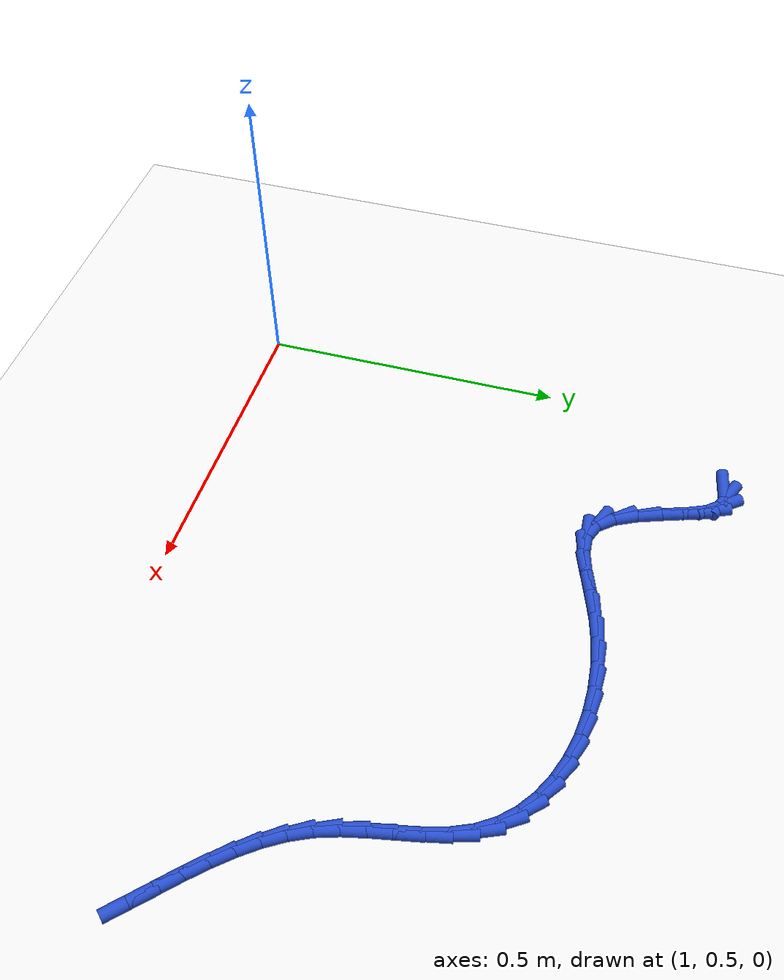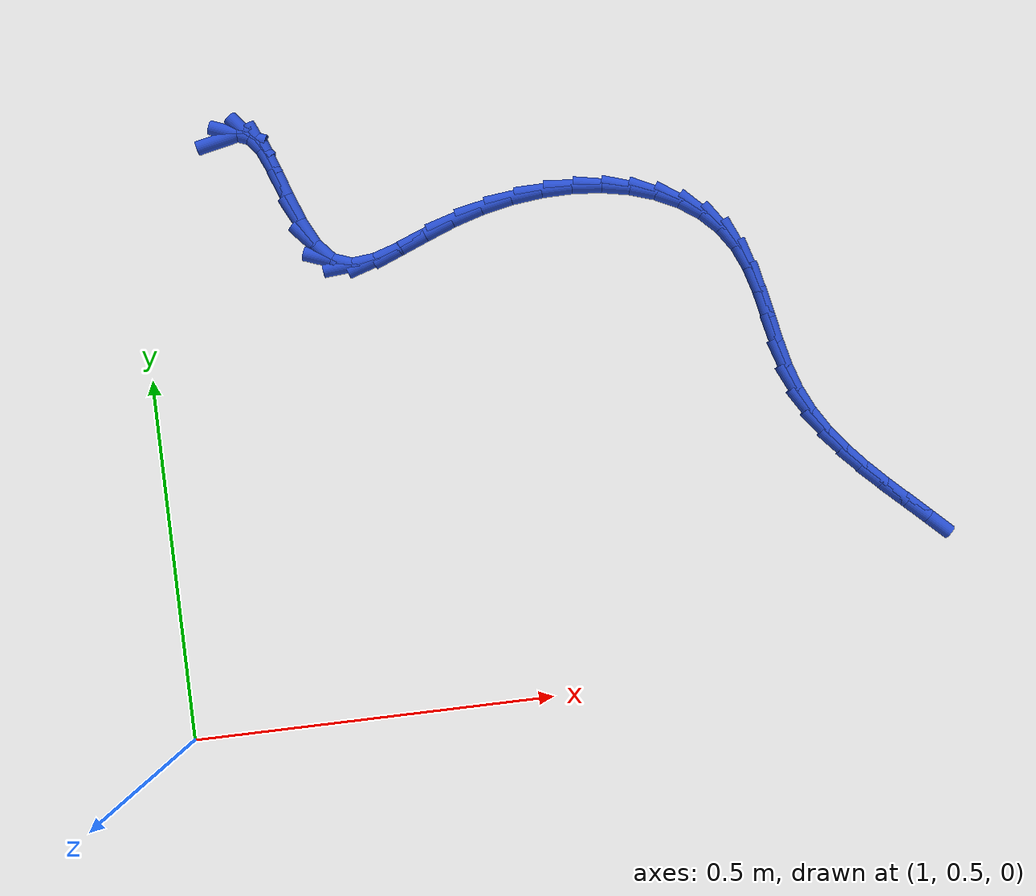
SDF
<sdf version="1.6">
 <world name="default">
  <model name="ground_plane">
   <static>1</static>
   <link name="link">
    <collision name="collision">
     <geometry><plane><normal>0 0 1</normal><size>100 100</size></plane></geometry>
     <surface><friction><ode><mu>100</mu><mu2>50</mu2></ode></friction></surface>
    </collision>
    <visual name="visual">
     <cast_shadows>0</cast_shadows>
     <geometry><plane><normal>0 0 1</normal><size>100 100</size></plane></geometry>
     <material>
      <script><uri>file://media/materials/scripts/gazebo.material</uri><name>Gazebo/WhiteGlow</name></script>
     </material>
    </visual>
   </link>
  </model>
  <model name="line">
   <link name="link_54">
    <pose>1.14125643744882 1.319054507780313 0.01 0 1.57 0.20908482270291834</pose>
    <collision name="collision">
     <geometry><cylinder><radius>0.01</radius><length>0.08</length></cylinder></geometry>
    </collision>
    <visual name="visual">
     <material>
      <script><name>Gazebo/Blue</name><uri>file://media/materials/scripts/gazebo.material</uri></script>
     </material>
     <geometry><cylinder><radius>0.01</radius><length>0.08</length></cylinder></geometry>
    </visual>
   </link>
   <link name="link_55">
    <pose>1.1596208996389854 1.3229511872990352 0.01 0 1.57 -0.3728819351918733</pose>
    <collision name="collision">
     <geometry><cylinder><radius>0.01</radius><length>0.08</length></cylinder></geometry>
    </collision>
    <visual name="visual">
     <material>
      <script><name>Gazebo/Blue</name><uri>file://media/materials/scripts/gazebo.material</uri></script>
     </material>
     <geometry><cylinder><radius>0.01</radius><length>0.08</length></cylinder></geometry>
    </visual>
   </link>
   <link name="link_56">
    <pose>1.1760893195778457 1.316509031784908 0.01 0 1.57 -0.8946897747275846</pose>
    <collision name="collision">
     <geometry><cylinder><radius>0.01</radius><length>0.08</length></cylinder></geometry>
    </collision>
    <visual name="visual">
     <material>
      <script><name>Gazebo/Blue</name><uri>file://media/materials/scripts/gazebo.material</uri></script>
     </material>
     <geometry><cylinder><radius>0.01</radius><length>0.08</length></cylinder></geometry>
    </visual>
   </link>
   <link name="link_57">
    <pose>1.1906662993884425 1.2983387304484006 0.01 0 1.57 -1.160216142932323</pose>
    <collision name="collision">
     <geometry><cylinder><radius>0.01</radius><length>0.08</length></cylinder></geometry>
    </collision>
    <visual name="visual">
     <material>
      <script><name>Gazebo/Blue</name><uri>file://media/materials/scripts/gazebo.material</uri></script>
     </material>
     <geometry><cylinder><radius>0.01</radius><length>0.08</length></cylinder></geometry>
    </visual>
   </link>
   <link name="link_58">
    <pose>1.2036650766326744 1.2684785297812609 0.01 0 1.57 -1.2380373773565452</pose>
    <collision name="collision">
     <geometry><cylinder><radius>0.01</radius><length>0.08</length></cylinder></geometry>
    </collision>
    <visual name="visual">
     <material>
      <script><name>Gazebo/Blue</name><uri>file://media/materials/scripts/gazebo.material</uri></script>
     </material>
     <geometry><cylinder><radius>0.01</radius><length>0.08</length></cylinder></geometry>
    </visual>
   </link>
   <link name="link_59">
    <pose>1.2164044828844498 1.2316179342745102 0.01 0 1.57 -1.2196464384357153</pose>
    <collision name="collision">
     <geometry><cylinder><radius>0.01</radius><length>0.08</length></cylinder></geometry>
    </collision>
    <visual name="visual">
     <material>
      <script><name>Gazebo/Blue</name><uri>file://media/materials/scripts/gazebo.material</uri></script>
     </material>
     <geometry><cylinder><radius>0.01</radius><length>0.08</length></cylinder></geometry>
    </visual>
   </link>
   <link name="link_60">
    <pose>1.230407811672967 1.193392163383399 0.01 0 1.57 -1.111571690982287</pose>
    <collision name="collision">
     <geometry><cylinder><radius>0.01</radius><length>0.08</length></cylinder></geometry>
    </collision>
    <visual name="visual">
     <material>
      <script><name>Gazebo/Blue</name><uri>file://media/materials/scripts/gazebo.material</uri></script>
     </material>
     <geometry><cylinder><radius>0.01</radius><length>0.08</length></cylinder></geometry>
    </visual>
   </link>
   <link name="link_61">
    <pose>1.2471983565274267 1.1594364365631769 0.01 0 1.57 -0.8506279636703741</pose>
    <collision name="collision">
     <geometry><cylinder><radius>0.01</radius><length>0.08</length></cylinder></geometry>
    </collision>
    <visual name="visual">
     <material>
      <script><name>Gazebo/Blue</name><uri>file://media/materials/scripts/gazebo.material</uri></script>
     </material>
     <geometry><cylinder><radius>0.01</radius><length>0.08</length></cylinder></geometry>
    </visual>
   </link>
   <link name="link_62">
    <pose>1.268299410977027 1.1353859732690943 0.01 0 1.57 -0.3489514192805825</pose>
    <collision name="collision">
     <geometry><cylinder><radius>0.01</radius><length>0.08</length></cylinder></geometry>
    </collision>
    <visual name="visual">
     <material>
      <script><name>Gazebo/Blue</name><uri>file://media/materials/scripts/gazebo.material</uri></script>
     </material>
     <geometry><cylinder><radius>0.01</radius><length>0.08</length></cylinder></geometry>
    </visual>
   </link>
   <link name="link_63">
    <pose>1.294926438287658 1.1256979783619048 0.01 0 1.57 0.08648744381005208</pose>
    <collision name="collision">
     <geometry><cylinder><radius>0.01</radius><length>0.08</length></cylinder></geometry>
    </collision>
    <visual name="visual">
     <material>
      <script><name>Gazebo/Blue</name><uri>file://media/materials/scripts/gazebo.material</uri></script>
     </material>
     <geometry><cylinder><radius>0.01</radius><length>0.08</length></cylinder></geometry>
    </visual>
   </link>
   <link name="link_64">
    <pose>1.3266269085274736 1.128446527541109 0.01 0 1.57 0.3011649946265975</pose>
    <collision name="collision">
     <geometry><cylinder><radius>0.01</radius><length>0.08</length></cylinder></geometry>
    </collision>
    <visual name="visual">
     <material>
      <script><name>Gazebo/Blue</name><uri>file://media/materials/scripts/gazebo.material</uri></script>
     </material>
     <geometry><cylinder><radius>0.01</radius><length>0.08</length></cylinder></geometry>
    </visual>
   </link>
   <link name="link_65">
    <pose>1.3623859636388538 1.139553761436739 0.01 0 1.57 0.37751398148063653</pose>
    <collision name="collision">
     <geometry><cylinder><radius>0.01</radius><length>0.08</length></cylinder></geometry>
    </collision>
    <visual name="visual">
     <material>
      <script><name>Gazebo/Blue</name><uri>file://media/materials/scripts/gazebo.material</uri></script>
     </material>
     <geometry><cylinder><radius>0.01</radius><length>0.08</length></cylinder></geometry>
    </visual>
   </link>
   <link name="link_66">
    <pose>1.4011883149180222 1.15494017266849 0.01 0 1.57 0.3646558908011444</pose>
    <collision name="collision">
     <geometry><cylinder><radius>0.01</radius><length>0.08</length></cylinder></geometry>
    </collision>
    <visual name="visual">
     <material>
      <script><name>Gazebo/Blue</name><uri>file://media/materials/scripts/gazebo.material</uri></script>
     </material>
     <geometry><cylinder><radius>0.01</radius><length>0.08</length></cylinder></geometry>
    </visual>
   </link>
   <link name="link_67">
    <pose>1.4420186736612015 1.1705262538560572 0.01 0 1.57 0.28690080196045825</pose>
    <collision name="collision">
     <geometry><cylinder><radius>0.01</radius><length>0.08</length></cylinder></geometry>
    </collision>
    <visual name="visual">
     <material>
      <script><name>Gazebo/Blue</name><uri>file://media/materials/scripts/gazebo.material</uri></script>
     </material>
     <geometry><cylinder><radius>0.01</radius><length>0.08</length></cylinder></geometry>
    </visual>
   </link>
   <link name="link_68">
    <pose>1.4839280872649836 1.182891237093015 0.01 0 1.57 0.19678067178946596</pose>
    <collision name="collision">
     <geometry><cylinder><radius>0.01</radius><length>0.08</length></cylinder></geometry>
    </collision>
    <visual name="visual">
     <material>
      <script><name>Gazebo/Blue</name><uri>file://media/materials/scripts/gazebo.material</uri></script>
     </material>
     <geometry><cylinder><radius>0.01</radius><length>0.08</length></cylinder></geometry>
    </visual>
   </link>
   <link name="link_69">
    <pose>1.5262407419023671 1.1913267130962453 0.01 0 1.57 0.1063538825063388</pose>
    <collision name="collision">
     <geometry><cylinder><radius>0.01</radius><length>0.08</length></cylinder></geometry>
    </collision>
    <visual name="visual">
     <material>
      <script><name>Gazebo/Blue</name><uri>file://media/materials/scripts/gazebo.material</uri></script>
     </material>
     <geometry><cylinder><radius>0.01</radius><length>0.08</length></cylinder></geometry>
    </visual>
   </link>
   <link name="link_70">
    <pose>1.568351113933491 1.1958222774493221 0.01 0 1.57 0.013200565476109493</pose>
    <collision name="collision">
     <geometry><cylinder><radius>0.01</radius><length>0.08</length></cylinder></geometry>
    </collision>
    <visual name="visual">
     <material>
      <script><name>Gazebo/Blue</name><uri>file://media/materials/scripts/gazebo.material</uri></script>
     </material>
     <geometry><cylinder><radius>0.01</radius><length>0.08</length></cylinder></geometry>
    </visual>
   </link>
   <link name="link_71">
    <pose>1.6096536797798604 1.1963675263452456 0.01 0 1.57 -0.08541552683855674</pose>
    <collision name="collision">
     <geometry><cylinder><radius>0.01</radius><length>0.08</length></cylinder></geometry>
    </collision>
    <visual name="visual">
     <material>
      <script><name>Gazebo/Blue</name><uri>file://media/materials/scripts/gazebo.material</uri></script>
     </material>
     <geometry><cylinder><radius>0.01</radius><length>0.08</length></cylinder></geometry>
    </visual>
   </link>
   <link name="link_72">
    <pose>1.649542915862985 1.1929520559770164 0.01 0 1.57 -0.19263081671909488</pose>
    <collision name="collision">
     <geometry><cylinder><radius>0.01</radius><length>0.08</length></cylinder></geometry>
    </collision>
    <visual name="visual">
     <material>
      <script><name>Gazebo/Blue</name><uri>file://media/materials/scripts/gazebo.material</uri></script>
     </material>
     <geometry><cylinder><radius>0.01</radius><length>0.08</length></cylinder></geometry>
    </visual>
   </link>
   <link name="link_73">
    <pose>1.6874132986043708 1.1855654625376344 0.01 0 1.57 -0.31200205850015567</pose>
    <collision name="collision">
     <geometry><cylinder><radius>0.01</radius><length>0.08</length></cylinder></geometry>
    </collision>
    <visual name="visual">
     <material>
      <script><name>Gazebo/Blue</name><uri>file://media/materials/scripts/gazebo.material</uri></script>
     </material>
     <geometry><cylinder><radius>0.01</radius><length>0.08</length></cylinder></geometry>
    </visual>
   </link>
   <link name="link_74">
    <pose>1.7226593044255258 1.1741973422201 0.01 0 1.57 -0.44732500789042867</pose>
    <collision name="collision">
     <geometry><cylinder><radius>0.01</radius><length>0.08</length></cylinder></geometry>
    </collision>
    <visual name="visual">
     <material>
      <script><name>Gazebo/Blue</name><uri>file://media/materials/scripts/gazebo.material</uri></script>
     </material>
     <geometry><cylinder><radius>0.01</radius><length>0.08</length></cylinder></geometry>
    </visual>
   </link>
   <link name="link_75">
    <pose>1.7546754097479573 1.1588372912174139 0.01 0 1.57 -0.602002164188903</pose>
    <collision name="collision">
     <geometry><cylinder><radius>0.01</radius><length>0.08</length></cylinder></geometry>
    </collision>
    <visual name="visual">
     <material>
      <script><name>Gazebo/Blue</name><uri>file://media/materials/scripts/gazebo.material</uri></script>
     </material>
     <geometry><cylinder><radius>0.01</radius><length>0.08</length></cylinder></geometry>
    </visual>
   </link>
   <link name="link_76">
    <pose>1.7828560909931732 1.139474905722576 0.01 0 1.57 -0.7776595743954927</pose>
    <collision name="collision">
     <geometry><cylinder><radius>0.01</radius><length>0.08</length></cylinder></geometry>
    </collision>
    <visual name="visual">
     <material>
      <script><name>Gazebo/Blue</name><uri>file://media/materials/scripts/gazebo.material</uri></script>
     </material>
     <geometry><cylinder><radius>0.01</radius><length>0.08</length></cylinder></geometry>
    </visual>
   </link>
   <link name="link_77">
    <pose>1.8065958245826796 1.1160997819285867 0.01 0 1.57 -0.9720419461183182</pose>
    <collision name="collision">
     <geometry><cylinder><radius>0.01</radius><length>0.08</length></cylinder></geometry>
    </collision>
    <visual name="visual">
     <material>
      <script><name>Gazebo/Blue</name><uri>file://media/materials/scripts/gazebo.material</uri></script>
     </material>
     <geometry><cylinder><radius>0.01</radius><length>0.08</length></cylinder></geometry>
    </visual>
   </link>
   <link name="link_78">
    <pose>1.825289715618661 1.0887018277432392 0.01 0 1.57 -1.1604294190953401</pose>
    <collision name="collision">
     <geometry><cylinder><radius>0.01</radius><length>0.08</length></cylinder></geometry>
    </collision>
    <visual name="visual">
     <material>
      <script><name>Gazebo/Blue</name><uri>file://media/materials/scripts/gazebo.material</uri></script>
     </material>
     <geometry><cylinder><radius>0.01</radius><length>0.08</length></cylinder></geometry>
    </visual>
   </link>
   <link name="link_79">
    <pose>1.8388522328561603 1.0575284638937172 0.01 0 1.57 -1.2898459903864812</pose>
    <collision name="collision">
     <geometry><cylinder><radius>0.01</radius><length>0.08</length></cylinder></geometry>
    </collision>
    <visual name="visual">
     <material>
      <script><name>Gazebo/Blue</name><uri>file://media/materials/scripts/gazebo.material</uri></script>
     </material>
     <geometry><cylinder><radius>0.01</radius><length>0.08</length></cylinder></geometry>
    </visual>
   </link>
   <link name="link_80">
    <pose>1.848657600212605 1.0235508923449106 0.01 0 1.57 -1.358889460187783</pose>
    <collision name="collision">
     <geometry><cylinder><radius>0.01</radius><length>0.08</length></cylinder></geometry>
    </collision>
    <visual name="visual">
     <material>
      <script><name>Gazebo/Blue</name><uri>file://media/materials/scripts/gazebo.material</uri></script>
     </material>
     <geometry><cylinder><radius>0.01</radius><length>0.08</length></cylinder></geometry>
    </visual>
   </link>
   <link name="link_81">
    <pose>1.8563346160743521 0.9878665391223999 0.01 0 1.57 -1.3755550371633494</pose>
    <collision name="collision">
     <geometry><cylinder><radius>0.01</radius><length>0.08</length></cylinder></geometry>
    </collision>
    <visual name="visual">
     <material>
      <script><name>Gazebo/Blue</name><uri>file://media/materials/scripts/gazebo.material</uri></script>
     </material>
     <geometry><cylinder><radius>0.01</radius><length>0.08</length></cylinder></geometry>
    </visual>
   </link>
   <link name="link_82">
    <pose>1.8635120788277602 0.9515728302517653 0.01 0 1.57 -1.34283455802588</pose>
    <collision name="collision">
     <geometry><cylinder><radius>0.01</radius><length>0.08</length></cylinder></geometry>
    </collision>
    <visual name="visual">
     <material>
      <script><name>Gazebo/Blue</name><uri>file://media/materials/scripts/gazebo.material</uri></script>
     </material>
     <geometry><cylinder><radius>0.01</radius><length>0.08</length></cylinder></geometry>
    </visual>
   </link>
   <link name="link_83">
    <pose>1.8718187868591862 0.9157671917585872 0.01 0 1.57 -1.2580771367274763</pose>
    <collision name="collision">
     <geometry><cylinder><radius>0.01</radius><length>0.08</length></cylinder></geometry>
    </collision>
    <visual name="visual">
     <material>
      <script><name>Gazebo/Blue</name><uri>file://media/materials/scripts/gazebo.material</uri></script>
     </material>
     <geometry><cylinder><radius>0.01</radius><length>0.08</length></cylinder></geometry>
    </visual>
   </link>
   <link name="link_84">
    <pose>1.8828832019789707 0.8815468218239738 0.01 0 1.57 -1.1319422756844943</pose>
    <collision name="collision">
     <geometry><cylinder><radius>0.01</radius><length>0.08</length></cylinder></geometry>
    </collision>
    <visual name="visual">
     <material>
      <script><name>Gazebo/Blue</name><uri>file://media/materials/scripts/gazebo.material</uri></script>
     </material>
     <geometry><cylinder><radius>0.01</radius><length>0.08</length></cylinder></geometry>
    </visual>
   </link>
   <link name="link_85">
    <pose>1.897842583577698 0.8496764001171229 0.01 0 1.57 -1.0141010092321836</pose>
    <collision name="collision">
     <geometry><cylinder><radius>0.01</radius><length>0.08</length></cylinder></geometry>
    </collision>
    <visual name="visual">
     <material>
      <script><name>Gazebo/Blue</name><uri>file://media/materials/scripts/gazebo.material</uri></script>
     </material>
     <geometry><cylinder><radius>0.01</radius><length>0.08</length></cylinder></geometry>
    </visual>
   </link>
   <link name="link_86">
    <pose>1.916359990903662 0.8199226494205109 0.01 0 1.57 -0.9177723113404721</pose>
    <collision name="collision">
     <geometry><cylinder><radius>0.01</radius><length>0.08</length></cylinder></geometry>
    </collision>
    <visual name="visual">
     <material>
      <script><name>Gazebo/Blue</name><uri>file://media/materials/scripts/gazebo.material</uri></script>
     </material>
     <geometry><cylinder><radius>0.01</radius><length>0.08</length></cylinder></geometry>
    </visual>
   </link>
   <link name="link_87">
    <pose>1.9378230746777447 0.7918658552556821 0.01 0 1.57 -0.8443132824358416</pose>
    <collision name="collision">
     <geometry><cylinder><radius>0.01</radius><length>0.08</length></cylinder></geometry>
    </collision>
    <visual name="visual">
     <material>
      <script><name>Gazebo/Blue</name><uri>file://media/materials/scripts/gazebo.material</uri></script>
     </material>
     <geometry><cylinder><radius>0.01</radius><length>0.08</length></cylinder></geometry>
    </visual>
   </link>
   <link name="link_88">
    <pose>1.9616194856208322 0.7650863031441841 0.01 0 1.57 -0.7932642592845226</pose>
    <collision name="collision">
     <geometry><cylinder><radius>0.01</radius><length>0.08</length></cylinder></geometry>
    </collision>
    <visual name="visual">
     <material>
      <script><name>Gazebo/Blue</name><uri>file://media/materials/scripts/gazebo.material</uri></script>
     </material>
     <geometry><cylinder><radius>0.01</radius><length>0.08</length></cylinder></geometry>
    </visual>
   </link>
   <link name="link_89">
    <pose>1.9871368744538065 0.7391642786075613 0.01 0 1.57 -0.7634903086315116</pose>
    <collision name="collision">
     <geometry><cylinder><radius>0.01</radius><length>0.08</length></cylinder></geometry>
    </collision>
    <visual name="visual">
     <material>
      <script><name>Gazebo/Blue</name><uri>file://media/materials/scripts/gazebo.material</uri></script>
     </material>
     <geometry><cylinder><radius>0.01</radius><length>0.08</length></cylinder></geometry>
    </visual>
   </link>
   <link name="link_90">
    <pose>2.0137628918975525 0.7136800671673608 0.01 0 1.57 -0.7539152427180406</pose>
    <collision name="collision">
     <geometry><cylinder><radius>0.01</radius><length>0.08</length></cylinder></geometry>
    </collision>
    <visual name="visual">
     <material>
      <script><name>Gazebo/Blue</name><uri>file://media/materials/scripts/gazebo.material</uri></script>
     </material>
     <geometry><cylinder><radius>0.01</radius><length>0.08</length></cylinder></geometry>
    </visual>
   </link>
   <link name="link_91">
    <pose>2.0408851886729527 0.688213954345127 0.01 0 1.57 -0.7638042159095496</pose>
    <collision name="collision">
     <geometry><cylinder><radius>0.01</radius><length>0.08</length></cylinder></geometry>
    </collision>
    <visual name="visual">
     <material>
      <script><name>Gazebo/Blue</name><uri>file://media/materials/scripts/gazebo.material</uri></script>
     </material>
     <geometry><cylinder><radius>0.01</radius><length>0.08</length></cylinder></geometry>
    </visual>
   </link>
  </model>
 </world>
</sdf>
